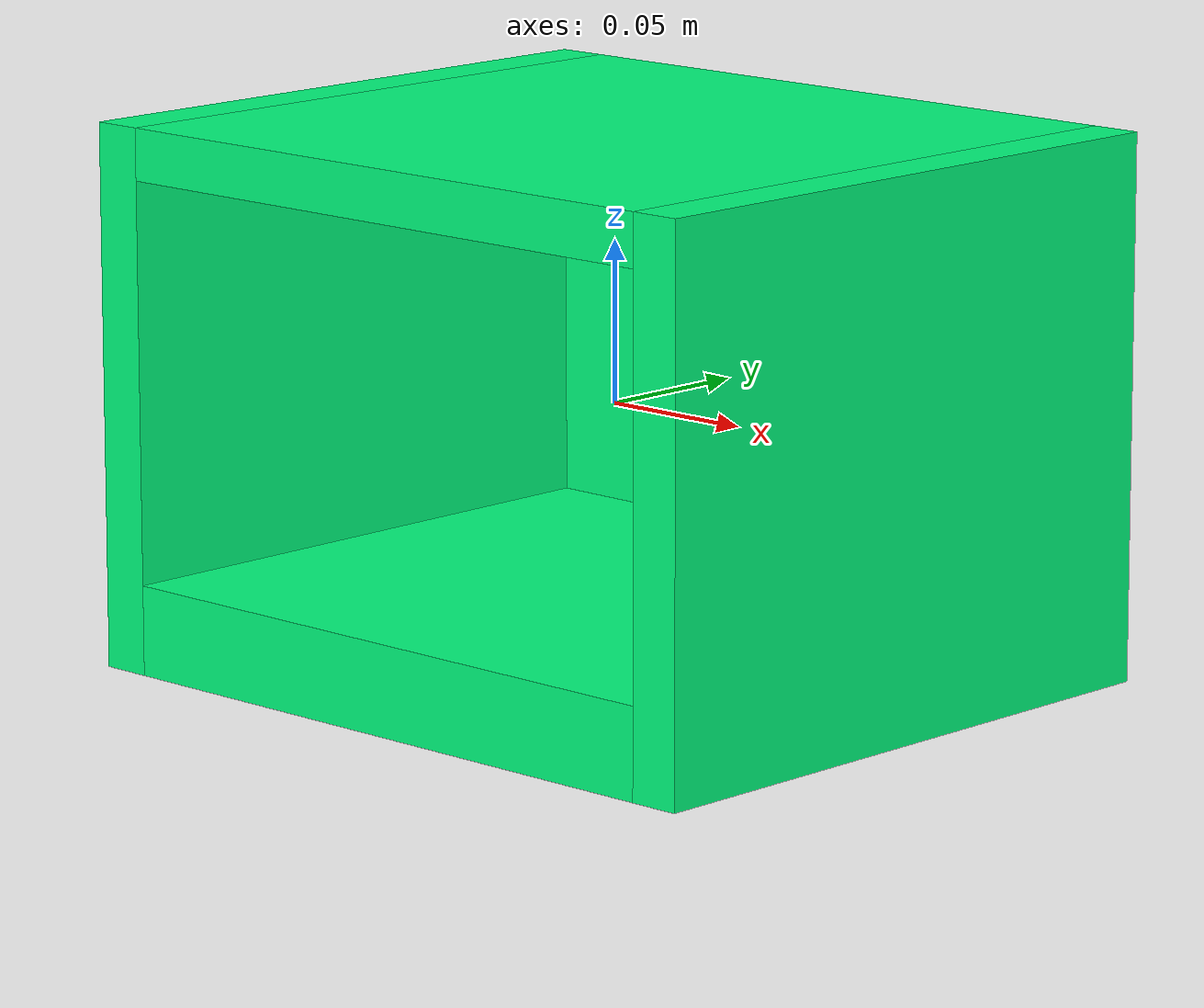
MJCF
<mujoco model="target_box">
    <worldbody>
        <body name="target_box" pos="0.0 0.0 0.0" quat="1 0 0 0">
            <geom name="target_box0" pos="-0.11 0 0" size="0.008 0.1 0.084" rgba="0 1 0.5 1.0" type="box" mass=".05" conaffinity="1" condim="4" contype="1"/>
            <geom name="target_box1" pos="0.11 0 0" size="0.008 0.1 0.084" rgba="0 1 0.5 1.0" type="box" mass=".05" conaffinity="1" condim="4" contype="1"/>
            <geom name="target_box2" pos="0 0.092 -0.008" size="0.102 0.008 0.076" rgba="0 1 0.5 1.0" type="box" mass=".05" conaffinity="1" condim="4" contype="1"/>
            <geom name="target_box3" pos="0 -0.008 -0.07" size="0.102 0.092 0.014" rgba="0 1 0.5 1.0" type="box" mass=".05" conaffinity="1" condim="4" contype="1"/>
            <geom name="target_box4" pos="0 0 0.076" size="0.102 0.1 0.008" rgba="0 1 0.5 1.0" type="box" mass=".05" conaffinity="1" condim="4" contype="1"/>
        </body>
    </worldbody>
</mujoco>
